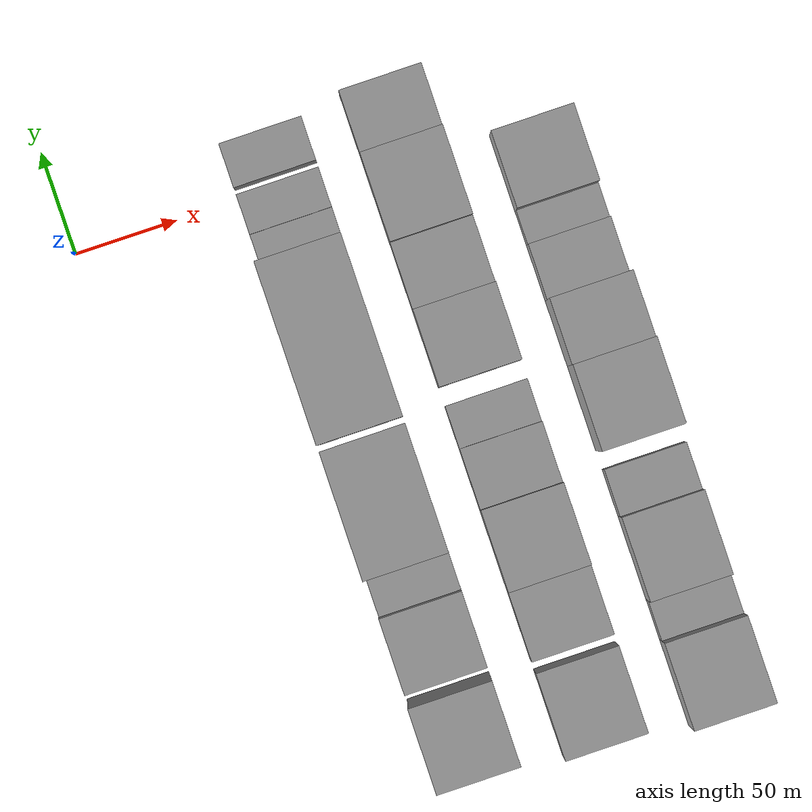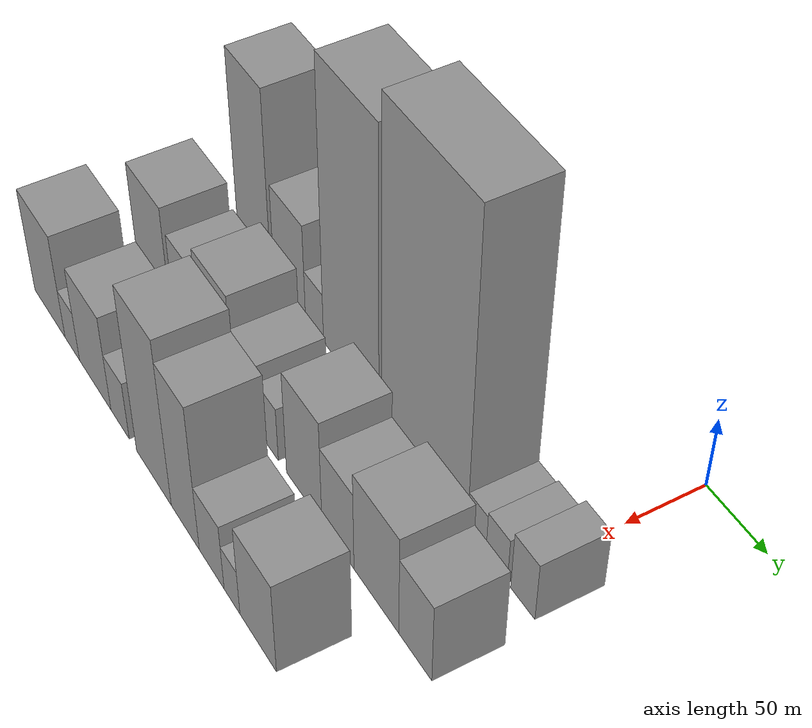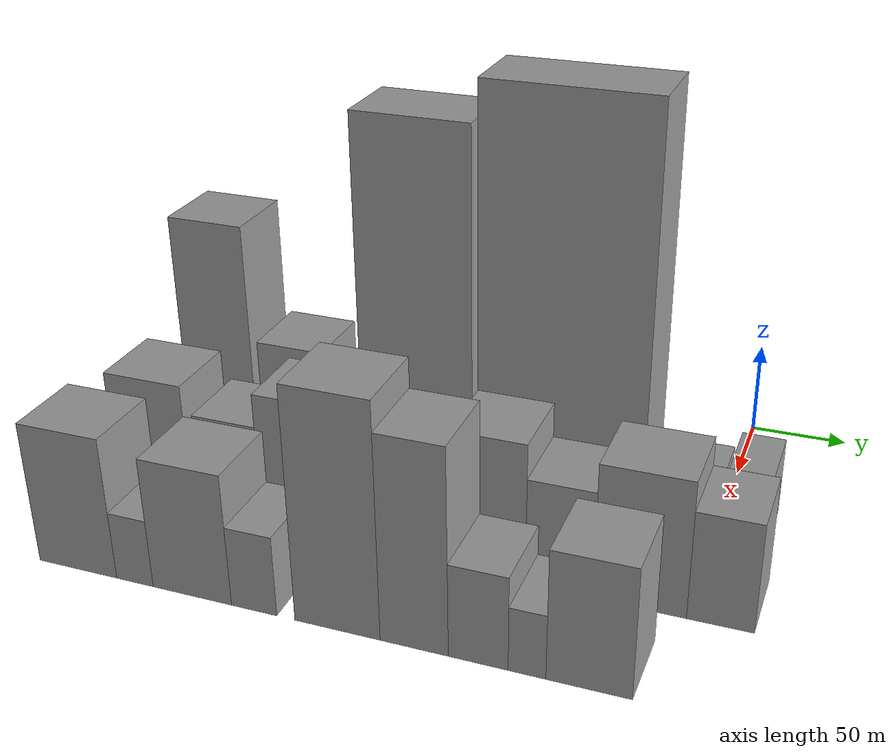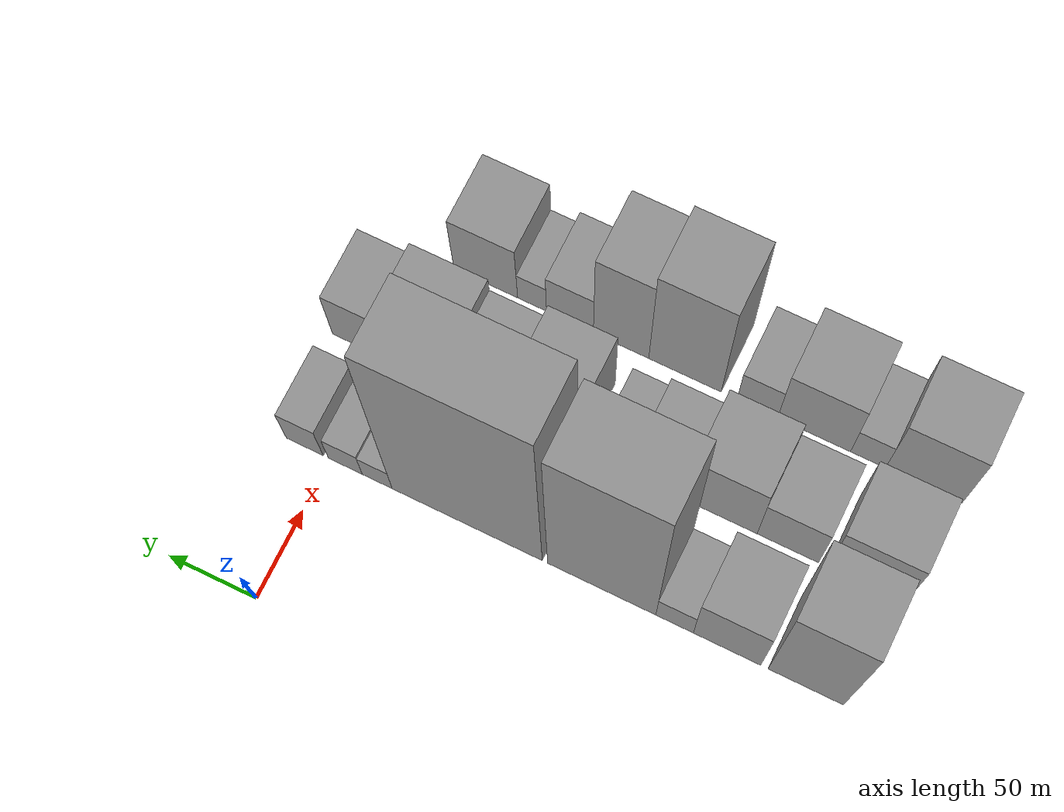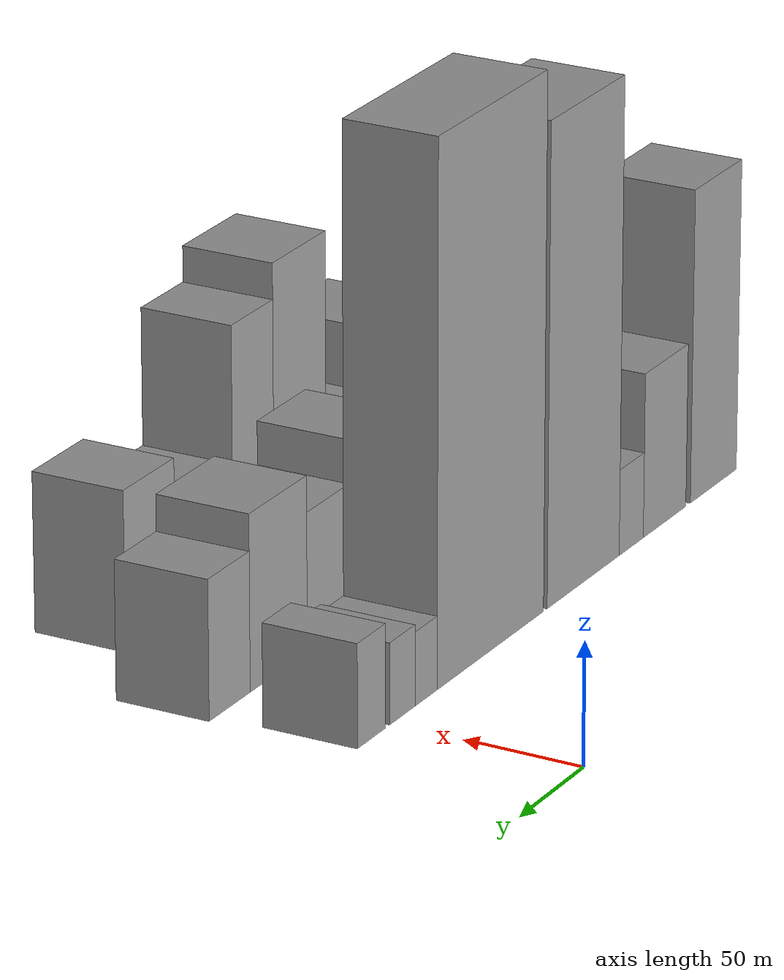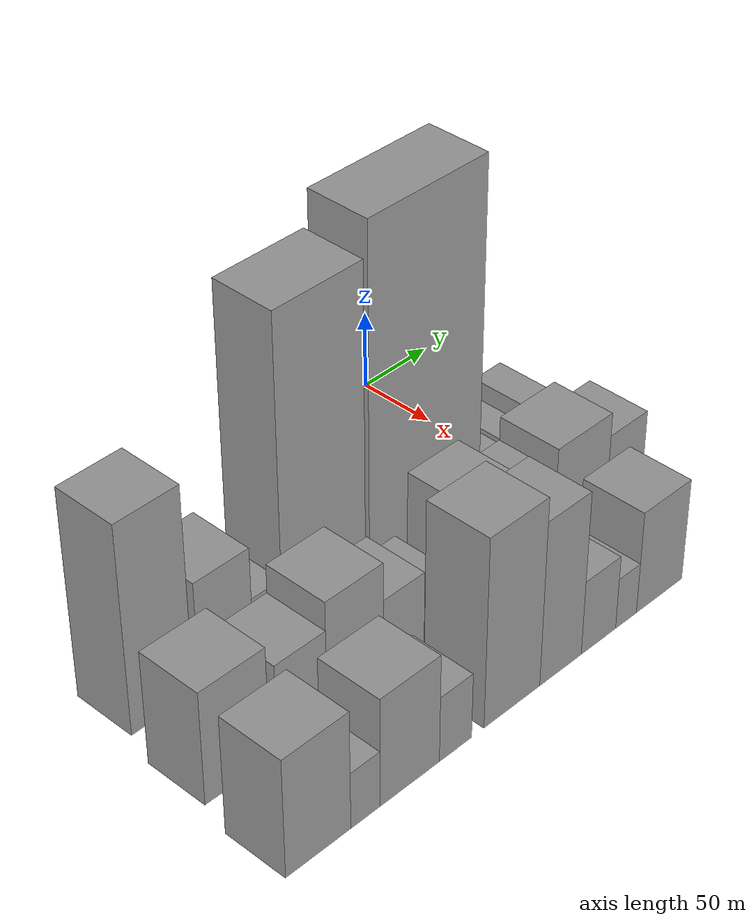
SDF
<sdf version="1.6">
 <world name="default">
  <model name="building_12">
   <static>1</static>
   <pose>100.0000 -265.6356 0 0.000000 0.000000 0.000000</pose>
   <link name="link">
    <pose>0 0 66.00 0 0 0</pose>
    <collision name="collision"><geometry><box><size>40.0000 40.8657 132.0000</size></box></geometry></collision>
    <visual name="visual">
     <cast_shadows>0</cast_shadows>
     <geometry><box><size>40.0000 40.8657 132.0000</size></box></geometry>
     <material>
      <script>
       <uri>model://grey_wall/materials/scripts</uri>
       <uri>model://grey_wall/materials/textures</uri>
       <name>vrc/grey_wall</name>
      </script>
     </material>
    </visual>
   </link>
  </model>
  <model name="building_13">
   <static>1</static>
   <pose>100.0000 -222.7136 0 0.000000 0.000000 0.000000</pose>
   <link name="link">
    <pose>0 0 34.50 0 0 0</pose>
    <collision name="collision"><geometry><box><size>40.0000 36.9784 69.0000</size></box></geometry></collision>
    <visual name="visual">
     <cast_shadows>0</cast_shadows>
     <geometry><box><size>40.0000 36.9784 69.0000</size></box></geometry>
     <material>
      <script>
       <uri>model://grey_wall/materials/scripts</uri>
       <uri>model://grey_wall/materials/textures</uri>
       <name>vrc/grey_wall</name>
      </script>
     </material>
    </visual>
   </link>
  </model>
  <model name="building_14">
   <static>1</static>
   <pose>100.0000 -193.8924 0 0.000000 0.000000 0.000000</pose>
   <link name="link">
    <pose>0 0 18.00 0 0 0</pose>
    <collision name="collision"><geometry><box><size>40.0000 20.6640 36.0000</size></box></geometry></collision>
    <visual name="visual">
     <cast_shadows>0</cast_shadows>
     <geometry><box><size>40.0000 20.6640 36.0000</size></box></geometry>
     <material>
      <script>
       <uri>model://grey_wall/materials/scripts</uri>
       <uri>model://grey_wall/materials/textures</uri>
       <name>vrc/grey_wall</name>
      </script>
     </material>
    </visual>
   </link>
  </model>
  <model name="building_15">
   <static>1</static>
   <pose>100.0000 -153.4347 0 0.000000 0.000000 0.000000</pose>
   <link name="link">
    <pose>0 0 99.00 0 0 0</pose>
    <collision name="collision"><geometry><box><size>40.0000 60.2513 198.0000</size></box></geometry></collision>
    <visual name="visual">
     <cast_shadows>0</cast_shadows>
     <geometry><box><size>40.0000 60.2513 198.0000</size></box></geometry>
     <material>
      <script>
       <uri>model://grey_wall/materials/scripts</uri>
       <uri>model://grey_wall/materials/textures</uri>
       <name>vrc/grey_wall</name>
      </script>
     </material>
    </visual>
   </link>
  </model>
  <model name="building_16">
   <static>1</static>
   <pose>100.0000 -77.7724 0 0.000000 0.000000 0.000000</pose>
   <link name="link">
    <pose>0 0 109.50 0 0 0</pose>
    <collision name="collision"><geometry><box><size>40.0000 85.0735 219.0000</size></box></geometry></collision>
    <visual name="visual">
     <cast_shadows>0</cast_shadows>
     <geometry><box><size>40.0000 85.0735 219.0000</size></box></geometry>
     <material>
      <script>
       <uri>model://grey_wall/materials/scripts</uri>
       <uri>model://grey_wall/materials/textures</uri>
       <name>vrc/grey_wall</name>
      </script>
     </material>
    </visual>
   </link>
  </model>
  <model name="building_17">
   <static>1</static>
   <pose>100.0000 -26.6533 0 0.000000 0.000000 0.000000</pose>
   <link name="link">
    <pose>0 0 15.00 0 0 0</pose>
    <collision name="collision"><geometry><box><size>40.0000 17.1646 30.0000</size></box></geometry></collision>
    <visual name="visual">
     <cast_shadows>0</cast_shadows>
     <geometry><box><size>40.0000 17.1646 30.0000</size></box></geometry>
     <material>
      <script>
       <uri>model://grey_wall/materials/scripts</uri>
       <uri>model://grey_wall/materials/textures</uri>
       <name>vrc/grey_wall</name>
      </script>
     </material>
    </visual>
   </link>
  </model>
  <model name="building_18">
   <static>1</static>
   <pose>100.0000 -8.3352 0 0.000000 0.000000 0.000000</pose>
   <link name="link">
    <pose>0 0 16.50 0 0 0</pose>
    <collision name="collision"><geometry><box><size>40.0000 19.4717 33.0000</size></box></geometry></collision>
    <visual name="visual">
     <cast_shadows>0</cast_shadows>
     <geometry><box><size>40.0000 19.4717 33.0000</size></box></geometry>
     <material>
      <script>
       <uri>model://grey_wall/materials/scripts</uri>
       <uri>model://grey_wall/materials/textures</uri>
       <name>vrc/grey_wall</name>
      </script>
     </material>
    </visual>
   </link>
  </model>
  <model name="building_19">
   <static>1</static>
   <pose>100.0000 15.1013 0 0.000000 0.000000 0.000000</pose>
   <link name="link">
    <pose>0 0 21.00 0 0 0</pose>
    <collision name="collision"><geometry><box><size>40.0000 21.4013 42.0000</size></box></geometry></collision>
    <visual name="visual">
     <cast_shadows>0</cast_shadows>
     <geometry><box><size>40.0000 21.4013 42.0000</size></box></geometry>
     <material>
      <script>
       <uri>model://grey_wall/materials/scripts</uri>
       <uri>model://grey_wall/materials/textures</uri>
       <name>vrc/grey_wall</name>
      </script>
     </material>
    </visual>
   </link>
  </model>
  <model name="building_49">
   <static>1</static>
   <pose>160.0000 -271.8601 0 0.000000 0.000000 0.000000</pose>
   <link name="link">
    <pose>0 0 36.00 0 0 0</pose>
    <collision name="collision"><geometry><box><size>40.0000 42.2543 72.0000</size></box></geometry></collision>
    <visual name="visual">
     <cast_shadows>0</cast_shadows>
     <geometry><box><size>40.0000 42.2543 72.0000</size></box></geometry>
     <material>
      <script>
       <uri>model://grey_wall/materials/scripts</uri>
       <uri>model://grey_wall/materials/textures</uri>
       <name>vrc/grey_wall</name>
      </script>
     </material>
    </visual>
   </link>
  </model>
  <model name="building_50">
   <static>1</static>
   <pose>160.0000 -228.7493 0 0.000000 0.000000 0.000000</pose>
   <link name="link">
    <pose>0 0 28.50 0 0 0</pose>
    <collision name="collision"><geometry><box><size>40.0000 33.9673 57.0000</size></box></geometry></collision>
    <visual name="visual">
     <cast_shadows>0</cast_shadows>
     <geometry><box><size>40.0000 33.9673 57.0000</size></box></geometry>
     <material>
      <script>
       <uri>model://grey_wall/materials/scripts</uri>
       <uri>model://grey_wall/materials/textures</uri>
       <name>vrc/grey_wall</name>
      </script>
     </material>
    </visual>
   </link>
  </model>
  <model name="building_51">
   <static>1</static>
   <pose>160.0000 -191.9528 0 0.000000 0.000000 0.000000</pose>
   <link name="link">
    <pose>0 0 37.50 0 0 0</pose>
    <collision name="collision"><geometry><box><size>40.0000 39.6259 75.0000</size></box></geometry></collision>
    <visual name="visual">
     <cast_shadows>0</cast_shadows>
     <geometry><box><size>40.0000 39.6259 75.0000</size></box></geometry>
     <material>
      <script>
       <uri>model://grey_wall/materials/scripts</uri>
       <uri>model://grey_wall/materials/textures</uri>
       <name>vrc/grey_wall</name>
      </script>
     </material>
    </visual>
   </link>
  </model>
  <model name="building_52">
   <static>1</static>
   <pose>160.0000 -157.3839 0 0.000000 0.000000 0.000000</pose>
   <link name="link">
    <pose>0 0 25.50 0 0 0</pose>
    <collision name="collision"><geometry><box><size>40.0000 29.5119 51.0000</size></box></geometry></collision>
    <visual name="visual">
     <cast_shadows>0</cast_shadows>
     <geometry><box><size>40.0000 29.5119 51.0000</size></box></geometry>
     <material>
      <script>
       <uri>model://grey_wall/materials/scripts</uri>
       <uri>model://grey_wall/materials/textures</uri>
       <name>vrc/grey_wall</name>
      </script>
     </material>
    </visual>
   </link>
  </model>
  <model name="building_53">
   <static>1</static>
   <pose>160.0000 -132.2535 0 0.000000 0.000000 0.000000</pose>
   <link name="link">
    <pose>0 0 19.50 0 0 0</pose>
    <collision name="collision"><geometry><box><size>40.0000 20.7489 39.0000</size></box></geometry></collision>
    <visual name="visual">
     <cast_shadows>0</cast_shadows>
     <geometry><box><size>40.0000 20.7489 39.0000</size></box></geometry>
     <material>
      <script>
       <uri>model://grey_wall/materials/scripts</uri>
       <uri>model://grey_wall/materials/textures</uri>
       <name>vrc/grey_wall</name>
      </script>
     </material>
    </visual>
   </link>
  </model>
  <model name="building_54">
   <static>1</static>
   <pose>160.0000 -94.1200 0 0.000000 0.000000 0.000000</pose>
   <link name="link">
    <pose>0 0 37.50 0 0 0</pose>
    <collision name="collision"><geometry><box><size>40.0000 37.5179 75.0000</size></box></geometry></collision>
    <visual name="visual">
     <cast_shadows>0</cast_shadows>
     <geometry><box><size>40.0000 37.5179 75.0000</size></box></geometry>
     <material>
      <script>
       <uri>model://grey_wall/materials/scripts</uri>
       <uri>model://grey_wall/materials/textures</uri>
       <name>vrc/grey_wall</name>
      </script>
     </material>
    </visual>
   </link>
  </model>
  <model name="building_55">
   <static>1</static>
   <pose>160.0000 -59.0901 0 0.000000 0.000000 0.000000</pose>
   <link name="link">
    <pose>0 0 28.50 0 0 0</pose>
    <collision name="collision"><geometry><box><size>40.0000 32.5419 57.0000</size></box></geometry></collision>
    <visual name="visual">
     <cast_shadows>0</cast_shadows>
     <geometry><box><size>40.0000 32.5419 57.0000</size></box></geometry>
     <material>
      <script>
       <uri>model://grey_wall/materials/scripts</uri>
       <uri>model://grey_wall/materials/textures</uri>
       <name>vrc/grey_wall</name>
      </script>
     </material>
    </visual>
   </link>
  </model>
  <model name="building_56">
   <static>1</static>
   <pose>160.0000 -21.2460 0 0.000000 0.000000 0.000000</pose>
   <link name="link">
    <pose>0 0 36.00 0 0 0</pose>
    <collision name="collision"><geometry><box><size>40.0000 43.1464 72.0000</size></box></geometry></collision>
    <visual name="visual">
     <cast_shadows>0</cast_shadows>
     <geometry><box><size>40.0000 43.1464 72.0000</size></box></geometry>
     <material>
      <script>
       <uri>model://grey_wall/materials/scripts</uri>
       <uri>model://grey_wall/materials/textures</uri>
       <name>vrc/grey_wall</name>
      </script>
     </material>
    </visual>
   </link>
  </model>
  <model name="building_57">
   <static>1</static>
   <pose>160.0000 15.5458 0 0.000000 0.000000 0.000000</pose>
   <link name="link">
    <pose>0 0 28.50 0 0 0</pose>
    <collision name="collision"><geometry><box><size>40.0000 30.4371 57.0000</size></box></geometry></collision>
    <visual name="visual">
     <cast_shadows>0</cast_shadows>
     <geometry><box><size>40.0000 30.4371 57.0000</size></box></geometry>
     <material>
      <script>
       <uri>model://grey_wall/materials/scripts</uri>
       <uri>model://grey_wall/materials/textures</uri>
       <name>vrc/grey_wall</name>
      </script>
     </material>
    </visual>
   </link>
  </model>
  <model name="building_79">
   <static>1</static>
   <pose>220.0000 -277.4956 0 0.000000 0.000000 0.000000</pose>
   <link name="link">
    <pose>0 0 37.50 0 0 0</pose>
    <collision name="collision"><geometry><box><size>40.0000 42.3291 75.0000</size></box></geometry></collision>
    <visual name="visual">
     <cast_shadows>0</cast_shadows>
     <geometry><box><size>40.0000 42.3291 75.0000</size></box></geometry>
     <material>
      <script>
       <uri>model://grey_wall/materials/scripts</uri>
       <uri>model://grey_wall/materials/textures</uri>
       <name>vrc/grey_wall</name>
      </script>
     </material>
    </visual>
   </link>
  </model>
  <model name="building_80">
   <static>1</static>
   <pose>220.0000 -246.5379 0 0.000000 0.000000 0.000000</pose>
   <link name="link">
    <pose>0 0 18.00 0 0 0</pose>
    <collision name="collision"><geometry><box><size>40.0000 19.5864 36.0000</size></box></geometry></collision>
    <visual name="visual">
     <cast_shadows>0</cast_shadows>
     <geometry><box><size>40.0000 19.5864 36.0000</size></box></geometry>
     <material>
      <script>
       <uri>model://grey_wall/materials/scripts</uri>
       <uri>model://grey_wall/materials/textures</uri>
       <name>vrc/grey_wall</name>
      </script>
     </material>
    </visual>
   </link>
  </model>
  <model name="building_81">
   <static>1</static>
   <pose>220.0000 -216.2953 0 0.000000 0.000000 0.000000</pose>
   <link name="link">
    <pose>0 0 34.50 0 0 0</pose>
    <collision name="collision"><geometry><box><size>40.0000 40.8987 69.0000</size></box></geometry></collision>
    <visual name="visual">
     <cast_shadows>0</cast_shadows>
     <geometry><box><size>40.0000 40.8987 69.0000</size></box></geometry>
     <material>
      <script>
       <uri>model://grey_wall/materials/scripts</uri>
       <uri>model://grey_wall/materials/textures</uri>
       <name>vrc/grey_wall</name>
      </script>
     </material>
    </visual>
   </link>
  </model>
  <model name="building_82">
   <static>1</static>
   <pose>220.0000 -184.4032 0 0.000000 0.000000 0.000000</pose>
   <link name="link">
    <pose>0 0 21.00 0 0 0</pose>
    <collision name="collision"><geometry><box><size>40.0000 22.8855 42.0000</size></box></geometry></collision>
    <visual name="visual">
     <cast_shadows>0</cast_shadows>
     <geometry><box><size>40.0000 22.8855 42.0000</size></box></geometry>
     <material>
      <script>
       <uri>model://grey_wall/materials/scripts</uri>
       <uri>model://grey_wall/materials/textures</uri>
       <name>vrc/grey_wall</name>
      </script>
     </material>
    </visual>
   </link>
  </model>
  <model name="building_83">
   <static>1</static>
   <pose>220.0000 -143.2648 0 0.000000 0.000000 0.000000</pose>
   <link name="link">
    <pose>0 0 60.00 0 0 0</pose>
    <collision name="collision"><geometry><box><size>40.0000 41.3913 120.0000</size></box></geometry></collision>
    <visual name="visual">
     <cast_shadows>0</cast_shadows>
     <geometry><box><size>40.0000 41.3913 120.0000</size></box></geometry>
     <material>
      <script>
       <uri>model://grey_wall/materials/scripts</uri>
       <uri>model://grey_wall/materials/textures</uri>
       <name>vrc/grey_wall</name>
      </script>
     </material>
    </visual>
   </link>
  </model>
  <model name="building_84">
   <static>1</static>
   <pose>220.0000 -106.6228 0 0.000000 0.000000 0.000000</pose>
   <link name="link">
    <pose>0 0 52.50 0 0 0</pose>
    <collision name="collision"><geometry><box><size>40.0000 31.8929 105.0000</size></box></geometry></collision>
    <visual name="visual">
     <cast_shadows>0</cast_shadows>
     <geometry><box><size>40.0000 31.8929 105.0000</size></box></geometry>
     <material>
      <script>
       <uri>model://grey_wall/materials/scripts</uri>
       <uri>model://grey_wall/materials/textures</uri>
       <name>vrc/grey_wall</name>
      </script>
     </material>
    </visual>
   </link>
  </model>
  <model name="building_85">
   <static>1</static>
   <pose>220.0000 -77.1014 0 0.000000 0.000000 0.000000</pose>
   <link name="link">
    <pose>0 0 24.00 0 0 0</pose>
    <collision name="collision"><geometry><box><size>40.0000 27.1498 48.0000</size></box></geometry></collision>
    <visual name="visual">
     <cast_shadows>0</cast_shadows>
     <geometry><box><size>40.0000 27.1498 48.0000</size></box></geometry>
     <material>
      <script>
       <uri>model://grey_wall/materials/scripts</uri>
       <uri>model://grey_wall/materials/textures</uri>
       <name>vrc/grey_wall</name>
      </script>
     </material>
    </visual>
   </link>
  </model>
  <model name="building_86">
   <static>1</static>
   <pose>220.0000 -55.1406 0 0.000000 0.000000 0.000000</pose>
   <link name="link">
    <pose>0 0 16.50 0 0 0</pose>
    <collision name="collision"><geometry><box><size>40.0000 16.7718 33.0000</size></box></geometry></collision>
    <visual name="visual">
     <cast_shadows>0</cast_shadows>
     <geometry><box><size>40.0000 16.7718 33.0000</size></box></geometry>
     <material>
      <script>
       <uri>model://grey_wall/materials/scripts</uri>
       <uri>model://grey_wall/materials/textures</uri>
       <name>vrc/grey_wall</name>
      </script>
     </material>
    </visual>
   </link>
  </model>
  <model name="building_87">
   <static>1</static>
   <pose>220.0000 -28.0522 0 0.000000 0.000000 0.000000</pose>
   <link name="link">
    <pose>0 0 33.00 0 0 0</pose>
    <collision name="collision"><geometry><box><size>40.0000 37.4050 66.0000</size></box></geometry></collision>
    <visual name="visual">
     <cast_shadows>0</cast_shadows>
     <geometry><box><size>40.0000 37.4050 66.0000</size></box></geometry>
     <material>
      <script>
       <uri>model://grey_wall/materials/scripts</uri>
       <uri>model://grey_wall/materials/textures</uri>
       <name>vrc/grey_wall</name>
      </script>
     </material>
    </visual>
   </link>
  </model>
 </world>
</sdf>
